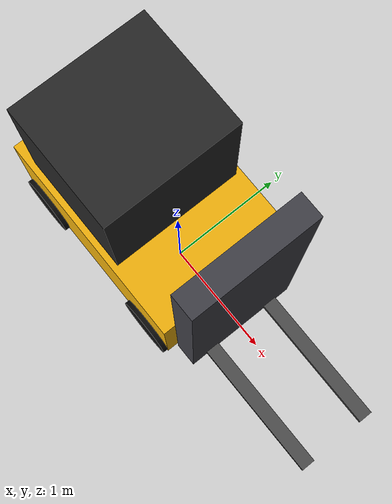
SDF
<?xml version="1.0" ?>
<sdf version="1.8">
  <model name="forklift">
    <link name="body">
      <inertial>
        <pose>-0.3 0 0.6 0 0 0</pose>
        <mass>2400</mass>
        <!-- 대략 2.4 x 1.2 x 1.2 m 직육면체 기준: I = m/12*(a^2+b^2) -->
        <inertia><ixx>576</ixx><iyy>1440</iyy><izz>1440</izz><ixy>0</ixy><ixz>0</ixz><iyz>0</iyz></inertia>
      </inertial>

      <!-- 차체 -->
      <collision name="chassis_collision">
        <pose>-0.3 0 0.60 0 0 0</pose>
        <geometry><box><size>1.8 1.2 0.90</size></box></geometry>
      </collision>
      <visual name="chassis">
        <pose>-0.3 0 0.60 0 0 0</pose>
        <geometry><box><size>1.8 1.2 0.90</size></box></geometry>
        <material><ambient>0.95 0.70 0.05 1</ambient><diffuse>0.95 0.70 0.05 1</diffuse><specular>0.3 0.3 0.3 1</specular></material>
      </visual>

      <!-- 운전석 보호 프레임 -->
      <collision name="cage_collision">
        <pose>-0.5 0 1.55 0 0 0</pose>
        <geometry><box><size>1.0 1.1 1.0</size></box></geometry>
      </collision>
      <visual name="cage">
        <pose>-0.5 0 1.55 0 0 0</pose>
        <geometry><box><size>1.0 1.1 1.0</size></box></geometry>
        <material><ambient>0.15 0.15 0.15 1</ambient><diffuse>0.15 0.15 0.15 1</diffuse></material>
      </visual>

      <!-- 마스트 -->
      <collision name="mast_collision">
        <pose>0.70 0 1.10 0 0 0</pose>
        <geometry><box><size>0.20 1.0 2.20</size></box></geometry>
      </collision>
      <visual name="mast">
        <pose>0.70 0 1.10 0 0 0</pose>
        <geometry><box><size>0.20 1.0 2.20</size></box></geometry>
        <material><ambient>0.25 0.25 0.28 1</ambient><diffuse>0.25 0.25 0.28 1</diffuse></material>
      </visual>

      <!-- 포크 2개 (z 0.05~0.10 m) -->
      <collision name="fork_l_collision">
        <pose>1.40 0.30 0.075 0 0 0</pose>
        <geometry><box><size>1.2 0.12 0.05</size></box></geometry>
      </collision>
      <visual name="fork_l">
        <pose>1.40 0.30 0.075 0 0 0</pose>
        <geometry><box><size>1.2 0.12 0.05</size></box></geometry>
        <material><ambient>0.3 0.3 0.3 1</ambient><diffuse>0.3 0.3 0.3 1</diffuse></material>
      </visual>
      <collision name="fork_r_collision">
        <pose>1.40 -0.30 0.075 0 0 0</pose>
        <geometry><box><size>1.2 0.12 0.05</size></box></geometry>
      </collision>
      <visual name="fork_r">
        <pose>1.40 -0.30 0.075 0 0 0</pose>
        <geometry><box><size>1.2 0.12 0.05</size></box></geometry>
        <material><ambient>0.3 0.3 0.3 1</ambient><diffuse>0.3 0.3 0.3 1</diffuse></material>
      </visual>

      <!-- 뒷바퀴 2개: 저마찰 구 충돌체(끌려가는 조향륜 근사) + 시각 원통 -->
      <collision name="wheel_rl_collision">
        <pose>-0.95 0.55 0.25 0 0 0</pose>
        <geometry><sphere><radius>0.25</radius></sphere></geometry>
        <surface><friction><ode><mu>0.02</mu><mu2>0.02</mu2></ode></friction></surface>
      </collision>
      <collision name="wheel_rr_collision">
        <pose>-0.95 -0.55 0.25 0 0 0</pose>
        <geometry><sphere><radius>0.25</radius></sphere></geometry>
        <surface><friction><ode><mu>0.02</mu><mu2>0.02</mu2></ode></friction></surface>
      </collision>
      <visual name="wheel_rl">
        <pose>-0.95 0.55 0.25 1.5708 0 0</pose>
        <geometry><cylinder><radius>0.25</radius><length>0.18</length></cylinder></geometry>
        <material><ambient>0.05 0.05 0.05 1</ambient><diffuse>0.05 0.05 0.05 1</diffuse></material>
      </visual>
      <visual name="wheel_rr">
        <pose>-0.95 -0.55 0.25 1.5708 0 0</pose>
        <geometry><cylinder><radius>0.25</radius><length>0.18</length></cylinder></geometry>
        <material><ambient>0.05 0.05 0.05 1</ambient><diffuse>0.05 0.05 0.05 1</diffuse></material>
      </visual>
    </link>

    <!-- 앞 구동륜 (조인트 축 = 링크 y, 양의 회전 = 전진) -->
    <link name="wheel_left">
      <pose>0.35 0.55 0.25 0 0 0</pose>
      <inertial>
        <mass>50</mass>
        <!-- 원통 m=50, r=0.25, L=0.18: 축 m r²/2 = 1.5625, 수직 m(3r²+L²)/12 = 0.916 -->
        <inertia><ixx>0.916</ixx><iyy>1.5625</iyy><izz>0.916</izz><ixy>0</ixy><ixz>0</ixz><iyz>0</iyz></inertia>
      </inertial>
      <collision name="collision">
        <pose>0 0 0 1.5708 0 0</pose>
        <geometry><cylinder><radius>0.25</radius><length>0.18</length></cylinder></geometry>
        <surface><friction><ode><mu>1.0</mu><mu2>1.0</mu2></ode></friction></surface>
      </collision>
      <visual name="visual">
        <pose>0 0 0 1.5708 0 0</pose>
        <geometry><cylinder><radius>0.25</radius><length>0.18</length></cylinder></geometry>
        <material><ambient>0.05 0.05 0.05 1</ambient><diffuse>0.05 0.05 0.05 1</diffuse></material>
      </visual>
    </link>
    <link name="wheel_right">
      <pose>0.35 -0.55 0.25 0 0 0</pose>
      <inertial>
        <mass>50</mass>
        <inertia><ixx>0.916</ixx><iyy>1.5625</iyy><izz>0.916</izz><ixy>0</ixy><ixz>0</ixz><iyz>0</iyz></inertia>
      </inertial>
      <collision name="collision">
        <pose>0 0 0 1.5708 0 0</pose>
        <geometry><cylinder><radius>0.25</radius><length>0.18</length></cylinder></geometry>
        <surface><friction><ode><mu>1.0</mu><mu2>1.0</mu2></ode></friction></surface>
      </collision>
      <visual name="visual">
        <pose>0 0 0 1.5708 0 0</pose>
        <geometry><cylinder><radius>0.25</radius><length>0.18</length></cylinder></geometry>
        <material><ambient>0.05 0.05 0.05 1</ambient><diffuse>0.05 0.05 0.05 1</diffuse></material>
      </visual>
    </link>
    <joint name="wheel_left_joint" type="revolute">
      <parent>body</parent>
      <child>wheel_left</child>
      <axis><xyz>0 1 0</xyz><limit><lower>-1e16</lower><upper>1e16</upper></limit></axis>
    </joint>
    <joint name="wheel_right_joint" type="revolute">
      <parent>body</parent>
      <child>wheel_right</child>
      <axis><xyz>0 1 0</xyz><limit><lower>-1e16</lower><upper>1e16</upper></limit></axis>
    </joint>
  </model>
</sdf>
